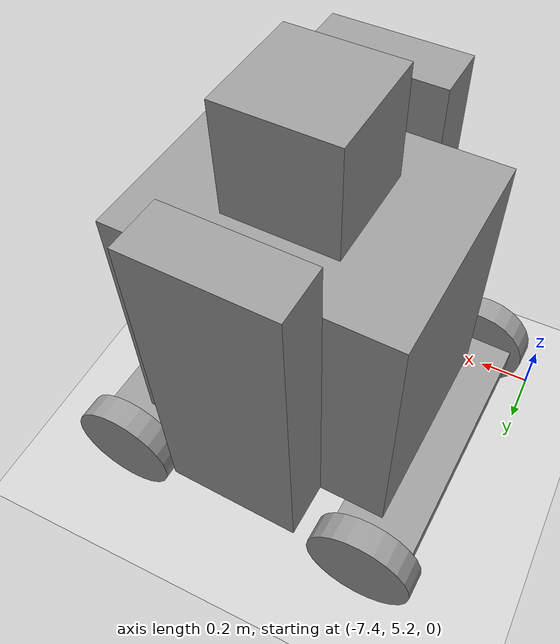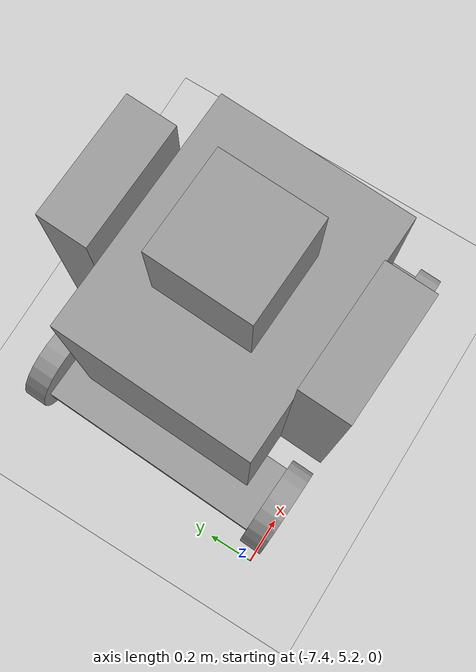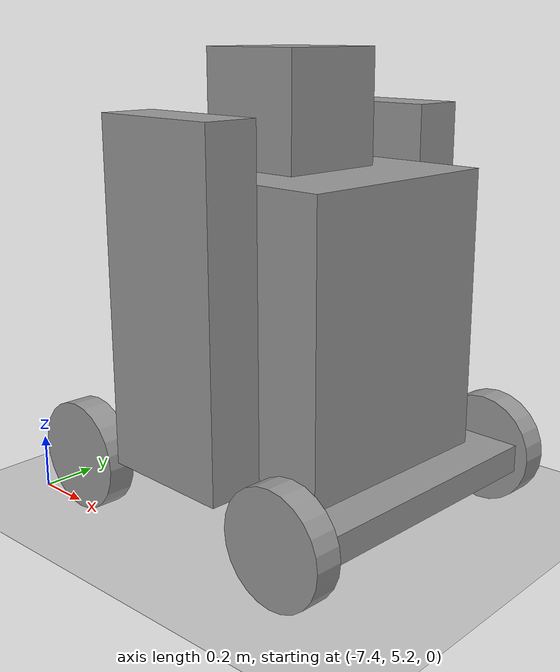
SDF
<sdf version="1.6">
 <world name="default">
  <model name="ground_plane">
   <static>1</static>
   <link name="link">
    <collision name="collision">
     <geometry><plane><normal>0 0 1</normal><size>100 100</size></plane></geometry>
     <surface>
      <contact><collide_bitmask>65535</collide_bitmask></contact>
      <friction><ode><mu>100</mu><mu2>50</mu2></ode></friction>
     </surface>
    </collision>
    <visual name="visual">
     <cast_shadows>0</cast_shadows>
     <geometry><plane><normal>0 0 1</normal><size>100 100</size></plane></geometry>
     <material>
      <script><uri>file://media/materials/scripts/gazebo.material</uri><name>Gazebo/Grey</name></script>
     </material>
    </visual>
   </link>
  </model>
  <model name="HumanoidRobot">
   <link name="link_0">
    <pose>-0.322222 -0.151781 0.006429 -0 -0 -0</pose>
    <inertial>
     <mass>1</mass>
     <inertia>
      <ixx>0.166667</ixx>
      <ixy>0</ixy>
      <ixz>0</ixz>
      <iyy>0.166667</iyy>
      <iyz>0</iyz>
      <izz>0.166667</izz>
     </inertia>
    </inertial>
    <visual name="visual">
     <geometry><box><size>0.3 1 0.1</size></box></geometry>
     <material>
      <lighting>1</lighting>
      <script><uri>file://media/materials/scripts/gazebo.material</uri><name>Gazebo/Grey</name></script>
      <shader type="pixel"><normal_map>__default__</normal_map></shader>
      <ambient>0.3 0.3 0.3 1</ambient>
      <diffuse>0.7 0.7 0.7 1</diffuse>
      <specular>0.01 0.01 0.01 1</specular>
      <emissive>0 0 0 1</emissive>
     </material>
    </visual>
    <collision name="collision">
     <geometry><box><size>0.3 1 0.1</size></box></geometry>
     <surface>
      <friction>
       <ode><mu>1</mu><mu2>1</mu2><fdir1>0 0 0</fdir1><slip1>0</slip1><slip2>0</slip2></ode>
       <torsional>
        <coefficient>1</coefficient>
        <patch_radius>0</patch_radius>
        <surface_radius>0</surface_radius>
        <use_patch_radius>1</use_patch_radius>
        <ode><slip>0</slip></ode>
       </torsional>
      </friction>
      <bounce><restitution_coefficient>0</restitution_coefficient><threshold>1e+06</threshold></bounce>
      <contact>
       <collide_without_contact>0</collide_without_contact>
       <collide_without_contact_bitmask>1</collide_without_contact_bitmask>
       <collide_bitmask>1</collide_bitmask>
       <ode>
        <soft_cfm>0</soft_cfm>
        <soft_erp>0.2</soft_erp>
        <kp>1e+13</kp>
        <kd>1</kd>
        <max_vel>0.01</max_vel>
        <min_depth>0</min_depth>
       </ode>
       <bullet>
        <split_impulse>1</split_impulse>
        <split_impulse_penetration_threshold>-0.01</split_impulse_penetration_threshold>
        <soft_cfm>0</soft_cfm>
        <soft_erp>0.2</soft_erp>
        <kp>1e+13</kp>
        <kd>1</kd>
       </bullet>
      </contact>
     </surface>
    </collision>
   </link>
   <link name="link_0_clone">
    <pose>0.677778 -0.151781 0.006429 -0 -0 -0</pose>
    <inertial>
     <mass>1</mass>
     <inertia>
      <ixx>0.166667</ixx>
      <ixy>0</ixy>
      <ixz>0</ixz>
      <iyy>0.166667</iyy>
      <iyz>0</iyz>
      <izz>0.166667</izz>
     </inertia>
    </inertial>
    <visual name="visual">
     <geometry><box><size>0.3 1 0.1</size></box></geometry>
     <material>
      <lighting>1</lighting>
      <script><uri>file://media/materials/scripts/gazebo.material</uri><name>Gazebo/Grey</name></script>
      <shader type="pixel"><normal_map>__default__</normal_map></shader>
      <ambient>0.3 0.3 0.3 1</ambient>
      <diffuse>0.7 0.7 0.7 1</diffuse>
      <specular>0.01 0.01 0.01 1</specular>
      <emissive>0 0 0 1</emissive>
     </material>
    </visual>
    <collision name="collision">
     <geometry><box><size>0.3 1 0.1</size></box></geometry>
     <surface>
      <friction>
       <ode><mu>1</mu><mu2>1</mu2><fdir1>0 0 0</fdir1><slip1>0</slip1><slip2>0</slip2></ode>
       <torsional>
        <coefficient>1</coefficient>
        <patch_radius>0</patch_radius>
        <surface_radius>0</surface_radius>
        <use_patch_radius>1</use_patch_radius>
        <ode><slip>0</slip></ode>
       </torsional>
      </friction>
      <bounce><restitution_coefficient>0</restitution_coefficient><threshold>1e+06</threshold></bounce>
      <contact>
       <collide_without_contact>0</collide_without_contact>
       <collide_without_contact_bitmask>1</collide_without_contact_bitmask>
       <collide_bitmask>1</collide_bitmask>
       <ode>
        <soft_cfm>0</soft_cfm>
        <soft_erp>0.2</soft_erp>
        <kp>1e+13</kp>
        <kd>1</kd>
        <max_vel>0.01</max_vel>
        <min_depth>0</min_depth>
       </ode>
       <bullet>
        <split_impulse>1</split_impulse>
        <split_impulse_penetration_threshold>-0.01</split_impulse_penetration_threshold>
        <soft_cfm>0</soft_cfm>
        <soft_erp>0.2</soft_erp>
        <kp>1e+13</kp>
        <kd>1</kd>
       </bullet>
      </contact>
     </surface>
    </collision>
   </link>
   <link name="link_1">
    <pose>-0.322222 -0.7018 0.006429 1.5707 -0 0</pose>
    <inertial>
     <mass>1</mass>
     <inertia><ixx>0.145833</ixx><ixy>0</ixy><ixz>0</ixz><iyy>0.145833</iyy><iyz>0</iyz><izz>0.125</izz></inertia>
    </inertial>
    <visual name="visual">
     <geometry><cylinder><radius>0.2</radius><length>0.1</length></cylinder></geometry>
     <material>
      <lighting>1</lighting>
      <script><uri>file://media/materials/scripts/gazebo.material</uri><name>Gazebo/Grey</name></script>
      <shader type="pixel"><normal_map>__default__</normal_map></shader>
      <ambient>0.3 0.3 0.3 1</ambient>
      <diffuse>0.7 0.7 0.7 1</diffuse>
      <specular>0.01 0.01 0.01 1</specular>
      <emissive>0 0 0 1</emissive>
     </material>
    </visual>
    <collision name="collision">
     <geometry><cylinder><radius>0.2</radius><length>0.1</length></cylinder></geometry>
     <surface>
      <friction>
       <ode><mu>1</mu><mu2>1</mu2><fdir1>0 0 0</fdir1><slip1>0</slip1><slip2>0</slip2></ode>
       <torsional>
        <coefficient>1</coefficient>
        <patch_radius>0</patch_radius>
        <surface_radius>0</surface_radius>
        <use_patch_radius>1</use_patch_radius>
        <ode><slip>0</slip></ode>
       </torsional>
      </friction>
      <bounce><restitution_coefficient>0</restitution_coefficient><threshold>1e+06</threshold></bounce>
      <contact>
       <collide_without_contact>0</collide_without_contact>
       <collide_without_contact_bitmask>1</collide_without_contact_bitmask>
       <collide_bitmask>1</collide_bitmask>
       <ode>
        <soft_cfm>0</soft_cfm>
        <soft_erp>0.2</soft_erp>
        <kp>1e+13</kp>
        <kd>1</kd>
        <max_vel>0.01</max_vel>
        <min_depth>0</min_depth>
       </ode>
       <bullet>
        <split_impulse>1</split_impulse>
        <split_impulse_penetration_threshold>-0.01</split_impulse_penetration_threshold>
        <soft_cfm>0</soft_cfm>
        <soft_erp>0.2</soft_erp>
        <kp>1e+13</kp>
        <kd>1</kd>
       </bullet>
      </contact>
     </surface>
    </collision>
   </link>
   <link name="link_1_clone">
    <pose>-0.322222 0.398238 0.006429 1.5707 -0 0</pose>
    <inertial>
     <mass>1</mass>
     <inertia><ixx>0.145833</ixx><ixy>0</ixy><ixz>0</ixz><iyy>0.145833</iyy><iyz>0</iyz><izz>0.125</izz></inertia>
    </inertial>
    <visual name="visual">
     <geometry><cylinder><radius>0.2</radius><length>0.1</length></cylinder></geometry>
     <material>
      <lighting>1</lighting>
      <script><uri>file://media/materials/scripts/gazebo.material</uri><name>Gazebo/Grey</name></script>
      <shader type="pixel"><normal_map>__default__</normal_map></shader>
      <ambient>0.3 0.3 0.3 1</ambient>
      <diffuse>0.7 0.7 0.7 1</diffuse>
      <specular>0.01 0.01 0.01 1</specular>
      <emissive>0 0 0 1</emissive>
     </material>
    </visual>
    <collision name="collision">
     <geometry><cylinder><radius>0.2</radius><length>0.1</length></cylinder></geometry>
     <surface>
      <friction>
       <ode><mu>1</mu><mu2>1</mu2><fdir1>0 0 0</fdir1><slip1>0</slip1><slip2>0</slip2></ode>
       <torsional>
        <coefficient>1</coefficient>
        <patch_radius>0</patch_radius>
        <surface_radius>0</surface_radius>
        <use_patch_radius>1</use_patch_radius>
        <ode><slip>0</slip></ode>
       </torsional>
      </friction>
      <bounce><restitution_coefficient>0</restitution_coefficient><threshold>1e+06</threshold></bounce>
      <contact>
       <collide_without_contact>0</collide_without_contact>
       <collide_without_contact_bitmask>1</collide_without_contact_bitmask>
       <collide_bitmask>1</collide_bitmask>
       <ode>
        <soft_cfm>0</soft_cfm>
        <soft_erp>0.2</soft_erp>
        <kp>1e+13</kp>
        <kd>1</kd>
        <max_vel>0.01</max_vel>
        <min_depth>0</min_depth>
       </ode>
       <bullet>
        <split_impulse>1</split_impulse>
        <split_impulse_penetration_threshold>-0.01</split_impulse_penetration_threshold>
        <soft_cfm>0</soft_cfm>
        <soft_erp>0.2</soft_erp>
        <kp>1e+13</kp>
        <kd>1</kd>
       </bullet>
      </contact>
     </surface>
    </collision>
   </link>
   <link name="link_1_clone_0">
    <pose>0.677778 0.398238 0.006429 1.5707 -0 0</pose>
    <inertial>
     <mass>1</mass>
     <inertia><ixx>0.145833</ixx><ixy>0</ixy><ixz>0</ixz><iyy>0.145833</iyy><iyz>0</iyz><izz>0.125</izz></inertia>
    </inertial>
    <visual name="visual">
     <geometry><cylinder><radius>0.2</radius><length>0.1</length></cylinder></geometry>
     <material>
      <lighting>1</lighting>
      <script><uri>file://media/materials/scripts/gazebo.material</uri><name>Gazebo/Grey</name></script>
      <shader type="pixel"><normal_map>__default__</normal_map></shader>
      <ambient>0.3 0.3 0.3 1</ambient>
      <diffuse>0.7 0.7 0.7 1</diffuse>
      <specular>0.01 0.01 0.01 1</specular>
      <emissive>0 0 0 1</emissive>
     </material>
    </visual>
    <collision name="collision">
     <geometry><cylinder><radius>0.2</radius><length>0.1</length></cylinder></geometry>
     <surface>
      <friction>
       <ode><mu>1</mu><mu2>1</mu2><fdir1>0 0 0</fdir1><slip1>0</slip1><slip2>0</slip2></ode>
       <torsional>
        <coefficient>1</coefficient>
        <patch_radius>0</patch_radius>
        <surface_radius>0</surface_radius>
        <use_patch_radius>1</use_patch_radius>
        <ode><slip>0</slip></ode>
       </torsional>
      </friction>
      <bounce><restitution_coefficient>0</restitution_coefficient><threshold>1e+06</threshold></bounce>
      <contact>
       <collide_without_contact>0</collide_without_contact>
       <collide_without_contact_bitmask>1</collide_without_contact_bitmask>
       <collide_bitmask>1</collide_bitmask>
       <ode>
        <soft_cfm>0</soft_cfm>
        <soft_erp>0.2</soft_erp>
        <kp>1e+13</kp>
        <kd>1</kd>
        <max_vel>0.01</max_vel>
        <min_depth>0</min_depth>
       </ode>
       <bullet>
        <split_impulse>1</split_impulse>
        <split_impulse_penetration_threshold>-0.01</split_impulse_penetration_threshold>
        <soft_cfm>0</soft_cfm>
        <soft_erp>0.2</soft_erp>
        <kp>1e+13</kp>
        <kd>1</kd>
       </bullet>
      </contact>
     </surface>
    </collision>
   </link>
   <link name="link_1_clone_1">
    <pose>0.677778 -0.7018 0.006429 1.5707 -0 0</pose>
    <inertial>
     <mass>1</mass>
     <inertia><ixx>0.145833</ixx><ixy>0</ixy><ixz>0</ixz><iyy>0.145833</iyy><iyz>0</iyz><izz>0.125</izz></inertia>
    </inertial>
    <visual name="visual">
     <geometry><cylinder><radius>0.2</radius><length>0.1</length></cylinder></geometry>
     <material>
      <lighting>1</lighting>
      <script><uri>file://media/materials/scripts/gazebo.material</uri><name>Gazebo/Grey</name></script>
      <shader type="pixel"><normal_map>__default__</normal_map></shader>
      <ambient>0.3 0.3 0.3 1</ambient>
      <diffuse>0.7 0.7 0.7 1</diffuse>
      <specular>0.01 0.01 0.01 1</specular>
      <emissive>0 0 0 1</emissive>
     </material>
    </visual>
    <collision name="collision">
     <geometry><cylinder><radius>0.2</radius><length>0.1</length></cylinder></geometry>
     <surface>
      <friction>
       <ode><mu>1</mu><mu2>1</mu2><fdir1>0 0 0</fdir1><slip1>0</slip1><slip2>0</slip2></ode>
       <torsional>
        <coefficient>1</coefficient>
        <patch_radius>0</patch_radius>
        <surface_radius>0</surface_radius>
        <use_patch_radius>1</use_patch_radius>
        <ode><slip>0</slip></ode>
       </torsional>
      </friction>
      <bounce><restitution_coefficient>0</restitution_coefficient><threshold>1e+06</threshold></bounce>
      <contact>
       <collide_without_contact>0</collide_without_contact>
       <collide_without_contact_bitmask>1</collide_without_contact_bitmask>
       <collide_bitmask>1</collide_bitmask>
       <ode>
        <soft_cfm>0</soft_cfm>
        <soft_erp>0.2</soft_erp>
        <kp>1e+13</kp>
        <kd>1</kd>
        <max_vel>0.01</max_vel>
        <min_depth>0</min_depth>
       </ode>
       <bullet>
        <split_impulse>1</split_impulse>
        <split_impulse_penetration_threshold>-0.01</split_impulse_penetration_threshold>
        <soft_cfm>0</soft_cfm>
        <soft_erp>0.2</soft_erp>
        <kp>1e+13</kp>
        <kd>1</kd>
       </bullet>
      </contact>
     </surface>
    </collision>
   </link>
   <link name="link_2">
    <pose>0.177778 -0.151781 0.556429 -0 -0 -0</pose>
    <inertial>
     <mass>1</mass>
     <inertia>
      <ixx>0.166667</ixx>
      <ixy>0</ixy>
      <ixz>0</ixz>
      <iyy>0.166667</iyy>
      <iyz>0</iyz>
      <izz>0.166667</izz>
     </inertia>
    </inertial>
    <visual name="visual">
     <geometry><box><size>1 0.8 1</size></box></geometry>
     <material>
      <lighting>1</lighting>
      <script><uri>file://media/materials/scripts/gazebo.material</uri><name>Gazebo/Grey</name></script>
      <shader type="pixel"><normal_map>__default__</normal_map></shader>
      <ambient>0.3 0.3 0.3 1</ambient>
      <diffuse>0.7 0.7 0.7 1</diffuse>
      <specular>0.01 0.01 0.01 1</specular>
      <emissive>0 0 0 1</emissive>
     </material>
    </visual>
    <collision name="collision">
     <geometry><box><size>1 0.8 1</size></box></geometry>
     <surface>
      <friction>
       <ode><mu>1</mu><mu2>1</mu2><fdir1>0 0 0</fdir1><slip1>0</slip1><slip2>0</slip2></ode>
       <torsional>
        <coefficient>1</coefficient>
        <patch_radius>0</patch_radius>
        <surface_radius>0</surface_radius>
        <use_patch_radius>1</use_patch_radius>
        <ode><slip>0</slip></ode>
       </torsional>
      </friction>
      <bounce><restitution_coefficient>0</restitution_coefficient><threshold>1e+06</threshold></bounce>
      <contact>
       <collide_without_contact>0</collide_without_contact>
       <collide_without_contact_bitmask>1</collide_without_contact_bitmask>
       <collide_bitmask>1</collide_bitmask>
       <ode>
        <soft_cfm>0</soft_cfm>
        <soft_erp>0.2</soft_erp>
        <kp>1e+13</kp>
        <kd>1</kd>
        <max_vel>0.01</max_vel>
        <min_depth>0</min_depth>
       </ode>
       <bullet>
        <split_impulse>1</split_impulse>
        <split_impulse_penetration_threshold>-0.01</split_impulse_penetration_threshold>
        <soft_cfm>0</soft_cfm>
        <soft_erp>0.2</soft_erp>
        <kp>1e+13</kp>
        <kd>1</kd>
       </bullet>
      </contact>
     </surface>
    </collision>
   </link>
   <link name="link_3">
    <pose>0.177778 0.348219 0.656429 -0 -0 -0</pose>
    <inertial>
     <mass>1</mass>
     <inertia>
      <ixx>0.166667</ixx>
      <ixy>0</ixy>
      <ixz>0</ixz>
      <iyy>0.166667</iyy>
      <iyz>0</iyz>
      <izz>0.166667</izz>
     </inertia>
    </inertial>
    <visual name="visual">
     <geometry><box><size>0.5 0.2 1.2</size></box></geometry>
     <material>
      <lighting>1</lighting>
      <script><uri>file://media/materials/scripts/gazebo.material</uri><name>Gazebo/Grey</name></script>
      <shader type="pixel"><normal_map>__default__</normal_map></shader>
      <ambient>0.3 0.3 0.3 1</ambient>
      <diffuse>0.7 0.7 0.7 1</diffuse>
      <specular>0.01 0.01 0.01 1</specular>
      <emissive>0 0 0 1</emissive>
     </material>
    </visual>
    <collision name="collision">
     <geometry><box><size>0.5 0.2 1.2</size></box></geometry>
     <surface>
      <friction>
       <ode><mu>1</mu><mu2>1</mu2><fdir1>0 0 0</fdir1><slip1>0</slip1><slip2>0</slip2></ode>
       <torsional>
        <coefficient>1</coefficient>
        <patch_radius>0</patch_radius>
        <surface_radius>0</surface_radius>
        <use_patch_radius>1</use_patch_radius>
        <ode><slip>0</slip></ode>
       </torsional>
      </friction>
      <bounce><restitution_coefficient>0</restitution_coefficient><threshold>1e+06</threshold></bounce>
      <contact>
       <collide_without_contact>0</collide_without_contact>
       <collide_without_contact_bitmask>1</collide_without_contact_bitmask>
       <collide_bitmask>1</collide_bitmask>
       <ode>
        <soft_cfm>0</soft_cfm>
        <soft_erp>0.2</soft_erp>
        <kp>1e+13</kp>
        <kd>1</kd>
        <max_vel>0.01</max_vel>
        <min_depth>0</min_depth>
       </ode>
       <bullet>
        <split_impulse>1</split_impulse>
        <split_impulse_penetration_threshold>-0.01</split_impulse_penetration_threshold>
        <soft_cfm>0</soft_cfm>
        <soft_erp>0.2</soft_erp>
        <kp>1e+13</kp>
        <kd>1</kd>
       </bullet>
      </contact>
     </surface>
    </collision>
   </link>
   <link name="link_3_clone">
    <pose>0.177778 -0.651781 0.65643 -0 -0 -0</pose>
    <inertial>
     <mass>1</mass>
     <inertia>
      <ixx>0.166667</ixx>
      <ixy>0</ixy>
      <ixz>0</ixz>
      <iyy>0.166667</iyy>
      <iyz>0</iyz>
      <izz>0.166667</izz>
     </inertia>
    </inertial>
    <visual name="visual">
     <geometry><box><size>0.5 0.2 1.2</size></box></geometry>
     <material>
      <lighting>1</lighting>
      <script><uri>file://media/materials/scripts/gazebo.material</uri><name>Gazebo/Grey</name></script>
      <shader type="pixel"><normal_map>__default__</normal_map></shader>
      <ambient>0.3 0.3 0.3 1</ambient>
      <diffuse>0.7 0.7 0.7 1</diffuse>
      <specular>0.01 0.01 0.01 1</specular>
      <emissive>0 0 0 1</emissive>
     </material>
    </visual>
    <collision name="collision">
     <geometry><box><size>0.5 0.2 1.2</size></box></geometry>
     <surface>
      <friction>
       <ode><mu>1</mu><mu2>1</mu2><fdir1>0 0 0</fdir1><slip1>0</slip1><slip2>0</slip2></ode>
       <torsional>
        <coefficient>1</coefficient>
        <patch_radius>0</patch_radius>
        <surface_radius>0</surface_radius>
        <use_patch_radius>1</use_patch_radius>
        <ode><slip>0</slip></ode>
       </torsional>
      </friction>
      <bounce><restitution_coefficient>0</restitution_coefficient><threshold>1e+06</threshold></bounce>
      <contact>
       <collide_without_contact>0</collide_without_contact>
       <collide_without_contact_bitmask>1</collide_without_contact_bitmask>
       <collide_bitmask>1</collide_bitmask>
       <ode>
        <soft_cfm>0</soft_cfm>
        <soft_erp>0.2</soft_erp>
        <kp>1e+13</kp>
        <kd>1</kd>
        <max_vel>0.01</max_vel>
        <min_depth>0</min_depth>
       </ode>
       <bullet>
        <split_impulse>1</split_impulse>
        <split_impulse_penetration_threshold>-0.01</split_impulse_penetration_threshold>
        <soft_cfm>0</soft_cfm>
        <soft_erp>0.2</soft_erp>
        <kp>1e+13</kp>
        <kd>1</kd>
       </bullet>
      </contact>
     </surface>
    </collision>
   </link>
   <link name="link_4">
    <pose>0.177778 -0.151781 1.25643 -0 -0 -0</pose>
    <inertial>
     <mass>1</mass>
     <inertia>
      <ixx>0.166667</ixx>
      <ixy>0</ixy>
      <ixz>0</ixz>
      <iyy>0.166667</iyy>
      <iyz>0</iyz>
      <izz>0.166667</izz>
     </inertia>
    </inertial>
    <visual name="visual">
     <geometry><box><size>0.4 0.4 0.4</size></box></geometry>
     <material>
      <lighting>1</lighting>
      <script><uri>file://media/materials/scripts/gazebo.material</uri><name>Gazebo/Grey</name></script>
      <shader type="pixel"><normal_map>__default__</normal_map></shader>
      <ambient>0.3 0.3 0.3 1</ambient>
      <diffuse>0.7 0.7 0.7 1</diffuse>
      <specular>0.01 0.01 0.01 1</specular>
      <emissive>0 0 0 1</emissive>
     </material>
    </visual>
    <collision name="collision">
     <geometry><box><size>0.4 0.4 0.4</size></box></geometry>
     <surface>
      <friction>
       <ode><mu>1</mu><mu2>1</mu2><fdir1>0 0 0</fdir1><slip1>0</slip1><slip2>0</slip2></ode>
       <torsional>
        <coefficient>1</coefficient>
        <patch_radius>0</patch_radius>
        <surface_radius>0</surface_radius>
        <use_patch_radius>1</use_patch_radius>
        <ode><slip>0</slip></ode>
       </torsional>
      </friction>
      <bounce><restitution_coefficient>0</restitution_coefficient><threshold>1e+06</threshold></bounce>
      <contact>
       <collide_without_contact>0</collide_without_contact>
       <collide_without_contact_bitmask>1</collide_without_contact_bitmask>
       <collide_bitmask>1</collide_bitmask>
       <ode>
        <soft_cfm>0</soft_cfm>
        <soft_erp>0.2</soft_erp>
        <kp>1e+13</kp>
        <kd>1</kd>
        <max_vel>0.01</max_vel>
        <min_depth>0</min_depth>
       </ode>
       <bullet>
        <split_impulse>1</split_impulse>
        <split_impulse_penetration_threshold>-0.01</split_impulse_penetration_threshold>
        <soft_cfm>0</soft_cfm>
        <soft_erp>0.2</soft_erp>
        <kp>1e+13</kp>
        <kd>1</kd>
       </bullet>
      </contact>
     </surface>
    </collision>
   </link>
   <joint name="link_0_JOINT_2" type="revolute">
    <parent>link_0</parent>
    <child>link_1</child>
    <axis>
     <xyz>0 0 1</xyz>
     <use_parent_model_frame>0</use_parent_model_frame>
     <limit>
      <lower>-1.79769e+308</lower>
      <upper>1.79769e+308</upper>
      <effort>-1</effort>
      <velocity>-1</velocity>
     </limit>
     <dynamics>
      <spring_reference>0</spring_reference>
      <spring_stiffness>0</spring_stiffness>
      <damping>0</damping>
      <friction>0</friction>
     </dynamics>
    </axis>
    <physics>
     <ode><limit><cfm>0</cfm><erp>0.2</erp></limit><suspension><cfm>0</cfm><erp>0.2</erp></suspension></ode>
    </physics>
   </joint>
   <joint name="link_0_JOINT_3" type="revolute">
    <parent>link_0</parent>
    <child>link_1_clone</child>
    <axis>
     <xyz>1 0 0</xyz>
     <use_parent_model_frame>0</use_parent_model_frame>
     <limit>
      <lower>-1.79769e+308</lower>
      <upper>1.79769e+308</upper>
      <effort>-1</effort>
      <velocity>-1</velocity>
     </limit>
     <dynamics>
      <spring_reference>0</spring_reference>
      <spring_stiffness>0</spring_stiffness>
      <damping>0</damping>
      <friction>0</friction>
     </dynamics>
    </axis>
    <physics>
     <ode><limit><cfm>0</cfm><erp>0.2</erp></limit><suspension><cfm>0</cfm><erp>0.2</erp></suspension></ode>
    </physics>
   </joint>
   <joint name="link_0_clone_JOINT_4" type="revolute">
    <parent>link_0_clone</parent>
    <child>link_1_clone_0</child>
    <axis>
     <xyz>1 0 0</xyz>
     <use_parent_model_frame>0</use_parent_model_frame>
     <limit>
      <lower>-1.79769e+308</lower>
      <upper>1.79769e+308</upper>
      <effort>-1</effort>
      <velocity>-1</velocity>
     </limit>
     <dynamics>
      <spring_reference>0</spring_reference>
      <spring_stiffness>0</spring_stiffness>
      <damping>0</damping>
      <friction>0</friction>
     </dynamics>
    </axis>
    <physics>
     <ode><limit><cfm>0</cfm><erp>0.2</erp></limit><suspension><cfm>0</cfm><erp>0.2</erp></suspension></ode>
    </physics>
   </joint>
   <joint name="link_0_clone_JOINT_5" type="revolute">
    <parent>link_0_clone</parent>
    <child>link_1_clone_1</child>
    <axis>
     <xyz>1 0 0</xyz>
     <use_parent_model_frame>0</use_parent_model_frame>
     <limit>
      <lower>-1.79769e+308</lower>
      <upper>1.79769e+308</upper>
      <effort>-1</effort>
      <velocity>-1</velocity>
     </limit>
     <dynamics>
      <spring_reference>0</spring_reference>
      <spring_stiffness>0</spring_stiffness>
      <damping>0</damping>
      <friction>0</friction>
     </dynamics>
    </axis>
    <physics>
     <ode><limit><cfm>0</cfm><erp>0.2</erp></limit><suspension><cfm>0</cfm><erp>0.2</erp></suspension></ode>
    </physics>
   </joint>
   <joint name="link_2_JOINT_10" type="revolute">
    <parent>link_2</parent>
    <child>link_4</child>
    <axis>
     <xyz>0 0 1</xyz>
     <use_parent_model_frame>0</use_parent_model_frame>
     <limit>
      <lower>-1.79769e+308</lower>
      <upper>1.79769e+308</upper>
      <effort>-1</effort>
      <velocity>-1</velocity>
     </limit>
     <dynamics>
      <spring_reference>0</spring_reference>
      <spring_stiffness>0</spring_stiffness>
      <damping>0</damping>
      <friction>0</friction>
     </dynamics>
    </axis>
    <physics>
     <ode><limit><cfm>0</cfm><erp>0.2</erp></limit><suspension><cfm>0</cfm><erp>0.2</erp></suspension></ode>
    </physics>
   </joint>
   <joint name="link_2_JOINT_6" type="fixed">
    <parent>link_2</parent>
    <child>link_0</child>
    <physics>
     <ode><limit><cfm>0</cfm><erp>0.2</erp></limit><suspension><cfm>0</cfm><erp>0.2</erp></suspension></ode>
    </physics>
   </joint>
   <joint name="link_2_JOINT_7" type="fixed">
    <parent>link_2</parent>
    <child>link_0_clone</child>
    <physics>
     <ode><limit><cfm>0</cfm><erp>0.2</erp></limit><suspension><cfm>0</cfm><erp>0.2</erp></suspension></ode>
    </physics>
   </joint>
   <joint name="link_2_JOINT_8" type="fixed">
    <parent>link_2</parent>
    <child>link_3</child>
    <physics>
     <ode><limit><cfm>0</cfm><erp>0.2</erp></limit><suspension><cfm>0</cfm><erp>0.2</erp></suspension></ode>
    </physics>
   </joint>
   <joint name="link_2_JOINT_9" type="fixed">
    <parent>link_2</parent>
    <child>link_3_clone</child>
    <physics>
     <ode><limit><cfm>0</cfm><erp>0.2</erp></limit><suspension><cfm>0</cfm><erp>0.2</erp></suspension></ode>
    </physics>
   </joint>
   <static>0</static>
   <pose>-6.80498 5.91231 0.193574 -9e-06 -1e-05 -0.043113</pose>
  </model>
 </world>
</sdf>
